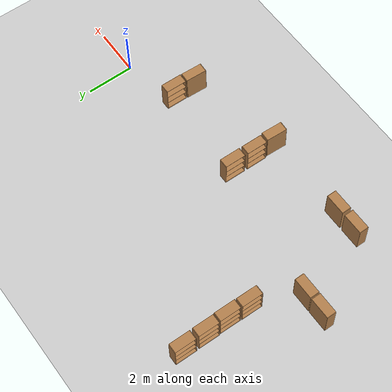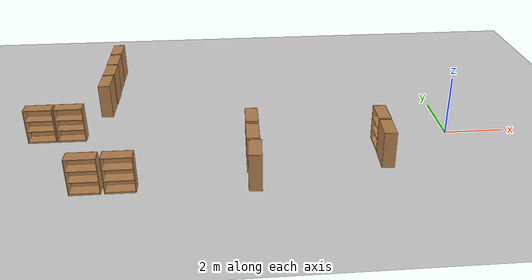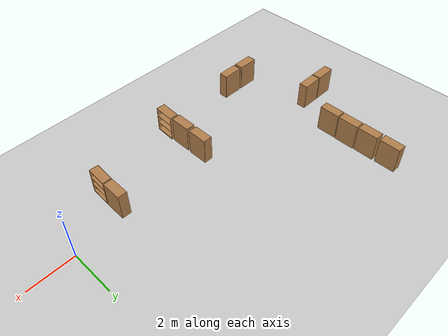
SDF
<sdf version="1.6">
 <world name="default">
  <model name="ground_plane">
   <static>1</static>
   <link name="link">
    <collision name="collision">
     <geometry><plane><normal>0 0 1</normal><size>100 100</size></plane></geometry>
     <surface>
      <contact><collide_bitmask>65535</collide_bitmask></contact>
      <friction><ode><mu>100</mu><mu2>50</mu2></ode></friction>
     </surface>
    </collision>
    <visual name="visual">
     <cast_shadows>0</cast_shadows>
     <geometry><plane><normal>0 0 1</normal><size>100 100</size></plane></geometry>
     <material>
      <script><uri>file://media/materials/scripts/gazebo.material</uri><name>Gazebo/Grey</name></script>
     </material>
    </visual>
   </link>
  </model>
  <model name="bookshelf_clone_0_clone_clone_3">
   <static>1</static>
   <link name="link">
    <inertial><mass>1</mass></inertial>
    <collision name="back">
     <pose>0 0.005 0.6 0 -0 0</pose>
     <geometry><box><size>0.9 0.01 1.2</size></box></geometry>
    </collision>
    <visual name="visual1">
     <pose>0 0.005 0.6 0 -0 0</pose>
     <geometry><box><size>0.9 0.01 1.2</size></box></geometry>
     <material>
      <script><uri>file://media/materials/scripts/gazebo.material</uri><name>Gazebo/Wood</name></script>
     </material>
    </visual>
    <collision name="left_side">
     <pose>0.45 -0.195 0.6 0 -0 0</pose>
     <geometry><box><size>0.02 0.4 1.2</size></box></geometry>
    </collision>
    <visual name="visual2">
     <pose>0.45 -0.195 0.6 0 -0 0</pose>
     <geometry><box><size>0.02 0.4 1.2</size></box></geometry>
     <material>
      <script><uri>file://media/materials/scripts/gazebo.material</uri><name>Gazebo/Wood</name></script>
     </material>
    </visual>
    <collision name="right_side">
     <pose>-0.45 -0.195 0.6 0 -0 0</pose>
     <geometry><box><size>0.02 0.4 1.2</size></box></geometry>
    </collision>
    <visual name="visual3">
     <pose>-0.45 -0.195 0.6 0 -0 0</pose>
     <geometry><box><size>0.02 0.4 1.2</size></box></geometry>
     <material>
      <script><uri>file://media/materials/scripts/gazebo.material</uri><name>Gazebo/Wood</name></script>
     </material>
    </visual>
    <collision name="bottom">
     <pose>0 -0.195 0.03 0 -0 0</pose>
     <geometry><box><size>0.88 0.4 0.06</size></box></geometry>
    </collision>
    <visual name="visual4">
     <pose>0 -0.195 0.03 0 -0 0</pose>
     <geometry><box><size>0.88 0.4 0.06</size></box></geometry>
     <material>
      <script><uri>file://media/materials/scripts/gazebo.material</uri><name>Gazebo/Wood</name></script>
     </material>
    </visual>
    <collision name="top">
     <pose>0 -0.195 1.19 0 -0 0</pose>
     <geometry><box><size>0.88 0.4 0.02</size></box></geometry>
    </collision>
    <visual name="visual5">
     <pose>0 -0.195 1.19 0 -0 0</pose>
     <geometry><box><size>0.88 0.4 0.02</size></box></geometry>
     <material>
      <script><uri>file://media/materials/scripts/gazebo.material</uri><name>Gazebo/Wood</name></script>
     </material>
    </visual>
    <collision name="low_shelf">
     <pose>0 -0.195 0.43 0 -0 0</pose>
     <geometry><box><size>0.88 0.4 0.02</size></box></geometry>
    </collision>
    <visual name="visual6">
     <pose>0 -0.195 0.43 0 -0 0</pose>
     <geometry><box><size>0.88 0.4 0.02</size></box></geometry>
     <material>
      <script><uri>file://media/materials/scripts/gazebo.material</uri><name>Gazebo/Wood</name></script>
     </material>
    </visual>
    <collision name="high_shelf">
     <pose>0 -0.195 0.8 0 -0 0</pose>
     <geometry><box><size>0.88 0.4 0.02</size></box></geometry>
    </collision>
    <visual name="visual7">
     <pose>0 -0.195 0.8 0 -0 0</pose>
     <geometry><box><size>0.88 0.4 0.02</size></box></geometry>
     <material>
      <script><uri>file://media/materials/scripts/gazebo.material</uri><name>Gazebo/Wood</name></script>
     </material>
    </visual>
   </link>
   <pose>-2.2019 -0.580917 0 0 0 -1.58271</pose>
  </model>
  <model name="bookshelf_clone_0_clone_clone_4">
   <static>1</static>
   <link name="link">
    <inertial><mass>1</mass></inertial>
    <collision name="back">
     <pose>0 0.005 0.6 0 -0 0</pose>
     <geometry><box><size>0.9 0.01 1.2</size></box></geometry>
    </collision>
    <visual name="visual1">
     <pose>0 0.005 0.6 0 -0 0</pose>
     <geometry><box><size>0.9 0.01 1.2</size></box></geometry>
     <material>
      <script><uri>file://media/materials/scripts/gazebo.material</uri><name>Gazebo/Wood</name></script>
     </material>
    </visual>
    <collision name="left_side">
     <pose>0.45 -0.195 0.6 0 -0 0</pose>
     <geometry><box><size>0.02 0.4 1.2</size></box></geometry>
    </collision>
    <visual name="visual2">
     <pose>0.45 -0.195 0.6 0 -0 0</pose>
     <geometry><box><size>0.02 0.4 1.2</size></box></geometry>
     <material>
      <script><uri>file://media/materials/scripts/gazebo.material</uri><name>Gazebo/Wood</name></script>
     </material>
    </visual>
    <collision name="right_side">
     <pose>-0.45 -0.195 0.6 0 -0 0</pose>
     <geometry><box><size>0.02 0.4 1.2</size></box></geometry>
    </collision>
    <visual name="visual3">
     <pose>-0.45 -0.195 0.6 0 -0 0</pose>
     <geometry><box><size>0.02 0.4 1.2</size></box></geometry>
     <material>
      <script><uri>file://media/materials/scripts/gazebo.material</uri><name>Gazebo/Wood</name></script>
     </material>
    </visual>
    <collision name="bottom">
     <pose>0 -0.195 0.03 0 -0 0</pose>
     <geometry><box><size>0.88 0.4 0.06</size></box></geometry>
    </collision>
    <visual name="visual4">
     <pose>0 -0.195 0.03 0 -0 0</pose>
     <geometry><box><size>0.88 0.4 0.06</size></box></geometry>
     <material>
      <script><uri>file://media/materials/scripts/gazebo.material</uri><name>Gazebo/Wood</name></script>
     </material>
    </visual>
    <collision name="top">
     <pose>0 -0.195 1.19 0 -0 0</pose>
     <geometry><box><size>0.88 0.4 0.02</size></box></geometry>
    </collision>
    <visual name="visual5">
     <pose>0 -0.195 1.19 0 -0 0</pose>
     <geometry><box><size>0.88 0.4 0.02</size></box></geometry>
     <material>
      <script><uri>file://media/materials/scripts/gazebo.material</uri><name>Gazebo/Wood</name></script>
     </material>
    </visual>
    <collision name="low_shelf">
     <pose>0 -0.195 0.43 0 -0 0</pose>
     <geometry><box><size>0.88 0.4 0.02</size></box></geometry>
    </collision>
    <visual name="visual6">
     <pose>0 -0.195 0.43 0 -0 0</pose>
     <geometry><box><size>0.88 0.4 0.02</size></box></geometry>
     <material>
      <script><uri>file://media/materials/scripts/gazebo.material</uri><name>Gazebo/Wood</name></script>
     </material>
    </visual>
    <collision name="high_shelf">
     <pose>0 -0.195 0.8 0 -0 0</pose>
     <geometry><box><size>0.88 0.4 0.02</size></box></geometry>
    </collision>
    <visual name="visual7">
     <pose>0 -0.195 0.8 0 -0 0</pose>
     <geometry><box><size>0.88 0.4 0.02</size></box></geometry>
     <material>
      <script><uri>file://media/materials/scripts/gazebo.material</uri><name>Gazebo/Wood</name></script>
     </material>
    </visual>
   </link>
   <pose>-2.6236 -1.54436 0 -0.000638 0.016748 1.52081</pose>
  </model>
  <model name="bookshelf_clone_0_clone_clone_3_clone_clone_2">
   <static>1</static>
   <link name="link">
    <inertial><mass>1</mass></inertial>
    <collision name="back">
     <pose>0 0.005 0.6 0 -0 0</pose>
     <geometry><box><size>0.9 0.01 1.2</size></box></geometry>
    </collision>
    <visual name="visual1">
     <pose>0 0.005 0.6 0 -0 0</pose>
     <geometry><box><size>0.9 0.01 1.2</size></box></geometry>
     <material>
      <script><uri>file://media/materials/scripts/gazebo.material</uri><name>Gazebo/Wood</name></script>
     </material>
    </visual>
    <collision name="left_side">
     <pose>0.45 -0.195 0.6 0 -0 0</pose>
     <geometry><box><size>0.02 0.4 1.2</size></box></geometry>
    </collision>
    <visual name="visual2">
     <pose>0.45 -0.195 0.6 0 -0 0</pose>
     <geometry><box><size>0.02 0.4 1.2</size></box></geometry>
     <material>
      <script><uri>file://media/materials/scripts/gazebo.material</uri><name>Gazebo/Wood</name></script>
     </material>
    </visual>
    <collision name="right_side">
     <pose>-0.45 -0.195 0.6 0 -0 0</pose>
     <geometry><box><size>0.02 0.4 1.2</size></box></geometry>
    </collision>
    <visual name="visual3">
     <pose>-0.45 -0.195 0.6 0 -0 0</pose>
     <geometry><box><size>0.02 0.4 1.2</size></box></geometry>
     <material>
      <script><uri>file://media/materials/scripts/gazebo.material</uri><name>Gazebo/Wood</name></script>
     </material>
    </visual>
    <collision name="bottom">
     <pose>0 -0.195 0.03 0 -0 0</pose>
     <geometry><box><size>0.88 0.4 0.06</size></box></geometry>
    </collision>
    <visual name="visual4">
     <pose>0 -0.195 0.03 0 -0 0</pose>
     <geometry><box><size>0.88 0.4 0.06</size></box></geometry>
     <material>
      <script><uri>file://media/materials/scripts/gazebo.material</uri><name>Gazebo/Wood</name></script>
     </material>
    </visual>
    <collision name="top">
     <pose>0 -0.195 1.19 0 -0 0</pose>
     <geometry><box><size>0.88 0.4 0.02</size></box></geometry>
    </collision>
    <visual name="visual5">
     <pose>0 -0.195 1.19 0 -0 0</pose>
     <geometry><box><size>0.88 0.4 0.02</size></box></geometry>
     <material>
      <script><uri>file://media/materials/scripts/gazebo.material</uri><name>Gazebo/Wood</name></script>
     </material>
    </visual>
    <collision name="low_shelf">
     <pose>0 -0.195 0.43 0 -0 0</pose>
     <geometry><box><size>0.88 0.4 0.02</size></box></geometry>
    </collision>
    <visual name="visual6">
     <pose>0 -0.195 0.43 0 -0 0</pose>
     <geometry><box><size>0.88 0.4 0.02</size></box></geometry>
     <material>
      <script><uri>file://media/materials/scripts/gazebo.material</uri><name>Gazebo/Wood</name></script>
     </material>
    </visual>
    <collision name="high_shelf">
     <pose>0 -0.195 0.8 0 -0 0</pose>
     <geometry><box><size>0.88 0.4 0.02</size></box></geometry>
    </collision>
    <visual name="visual7">
     <pose>0 -0.195 0.8 0 -0 0</pose>
     <geometry><box><size>0.88 0.4 0.02</size></box></geometry>
     <material>
      <script><uri>file://media/materials/scripts/gazebo.material</uri><name>Gazebo/Wood</name></script>
     </material>
    </visual>
   </link>
   <pose>-6.37164 -0.426664 0 0 0 -1.58271</pose>
  </model>
  <model name="bookshelf_clone_0_clone_clone_3_clone_clone_1">
   <static>1</static>
   <link name="link">
    <inertial><mass>1</mass></inertial>
    <collision name="back">
     <pose>0 0.005 0.6 0 -0 0</pose>
     <geometry><box><size>0.9 0.01 1.2</size></box></geometry>
    </collision>
    <visual name="visual1">
     <pose>0 0.005 0.6 0 -0 0</pose>
     <geometry><box><size>0.9 0.01 1.2</size></box></geometry>
     <material>
      <script><uri>file://media/materials/scripts/gazebo.material</uri><name>Gazebo/Wood</name></script>
     </material>
    </visual>
    <collision name="left_side">
     <pose>0.45 -0.195 0.6 0 -0 0</pose>
     <geometry><box><size>0.02 0.4 1.2</size></box></geometry>
    </collision>
    <visual name="visual2">
     <pose>0.45 -0.195 0.6 0 -0 0</pose>
     <geometry><box><size>0.02 0.4 1.2</size></box></geometry>
     <material>
      <script><uri>file://media/materials/scripts/gazebo.material</uri><name>Gazebo/Wood</name></script>
     </material>
    </visual>
    <collision name="right_side">
     <pose>-0.45 -0.195 0.6 0 -0 0</pose>
     <geometry><box><size>0.02 0.4 1.2</size></box></geometry>
    </collision>
    <visual name="visual3">
     <pose>-0.45 -0.195 0.6 0 -0 0</pose>
     <geometry><box><size>0.02 0.4 1.2</size></box></geometry>
     <material>
      <script><uri>file://media/materials/scripts/gazebo.material</uri><name>Gazebo/Wood</name></script>
     </material>
    </visual>
    <collision name="bottom">
     <pose>0 -0.195 0.03 0 -0 0</pose>
     <geometry><box><size>0.88 0.4 0.06</size></box></geometry>
    </collision>
    <visual name="visual4">
     <pose>0 -0.195 0.03 0 -0 0</pose>
     <geometry><box><size>0.88 0.4 0.06</size></box></geometry>
     <material>
      <script><uri>file://media/materials/scripts/gazebo.material</uri><name>Gazebo/Wood</name></script>
     </material>
    </visual>
    <collision name="top">
     <pose>0 -0.195 1.19 0 -0 0</pose>
     <geometry><box><size>0.88 0.4 0.02</size></box></geometry>
    </collision>
    <visual name="visual5">
     <pose>0 -0.195 1.19 0 -0 0</pose>
     <geometry><box><size>0.88 0.4 0.02</size></box></geometry>
     <material>
      <script><uri>file://media/materials/scripts/gazebo.material</uri><name>Gazebo/Wood</name></script>
     </material>
    </visual>
    <collision name="low_shelf">
     <pose>0 -0.195 0.43 0 -0 0</pose>
     <geometry><box><size>0.88 0.4 0.02</size></box></geometry>
    </collision>
    <visual name="visual6">
     <pose>0 -0.195 0.43 0 -0 0</pose>
     <geometry><box><size>0.88 0.4 0.02</size></box></geometry>
     <material>
      <script><uri>file://media/materials/scripts/gazebo.material</uri><name>Gazebo/Wood</name></script>
     </material>
    </visual>
    <collision name="high_shelf">
     <pose>0 -0.195 0.8 0 -0 0</pose>
     <geometry><box><size>0.88 0.4 0.02</size></box></geometry>
    </collision>
    <visual name="visual7">
     <pose>0 -0.195 0.8 0 -0 0</pose>
     <geometry><box><size>0.88 0.4 0.02</size></box></geometry>
     <material>
      <script><uri>file://media/materials/scripts/gazebo.material</uri><name>Gazebo/Wood</name></script>
     </material>
    </visual>
   </link>
   <pose>-6.38835 -1.46273 0 0 0 -1.58271</pose>
  </model>
  <model name="bookshelf_clone_0_clone_clone_3_clone_clone_2_clone">
   <static>1</static>
   <link name="link">
    <inertial><mass>1</mass></inertial>
    <collision name="back">
     <pose>0 0.005 0.6 0 -0 0</pose>
     <geometry><box><size>0.9 0.01 1.2</size></box></geometry>
    </collision>
    <visual name="visual1">
     <pose>0 0.005 0.6 0 -0 0</pose>
     <geometry><box><size>0.9 0.01 1.2</size></box></geometry>
     <material>
      <script><uri>file://media/materials/scripts/gazebo.material</uri><name>Gazebo/Wood</name></script>
     </material>
    </visual>
    <collision name="left_side">
     <pose>0.45 -0.195 0.6 0 -0 0</pose>
     <geometry><box><size>0.02 0.4 1.2</size></box></geometry>
    </collision>
    <visual name="visual2">
     <pose>0.45 -0.195 0.6 0 -0 0</pose>
     <geometry><box><size>0.02 0.4 1.2</size></box></geometry>
     <material>
      <script><uri>file://media/materials/scripts/gazebo.material</uri><name>Gazebo/Wood</name></script>
     </material>
    </visual>
    <collision name="right_side">
     <pose>-0.45 -0.195 0.6 0 -0 0</pose>
     <geometry><box><size>0.02 0.4 1.2</size></box></geometry>
    </collision>
    <visual name="visual3">
     <pose>-0.45 -0.195 0.6 0 -0 0</pose>
     <geometry><box><size>0.02 0.4 1.2</size></box></geometry>
     <material>
      <script><uri>file://media/materials/scripts/gazebo.material</uri><name>Gazebo/Wood</name></script>
     </material>
    </visual>
    <collision name="bottom">
     <pose>0 -0.195 0.03 0 -0 0</pose>
     <geometry><box><size>0.88 0.4 0.06</size></box></geometry>
    </collision>
    <visual name="visual4">
     <pose>0 -0.195 0.03 0 -0 0</pose>
     <geometry><box><size>0.88 0.4 0.06</size></box></geometry>
     <material>
      <script><uri>file://media/materials/scripts/gazebo.material</uri><name>Gazebo/Wood</name></script>
     </material>
    </visual>
    <collision name="top">
     <pose>0 -0.195 1.19 0 -0 0</pose>
     <geometry><box><size>0.88 0.4 0.02</size></box></geometry>
    </collision>
    <visual name="visual5">
     <pose>0 -0.195 1.19 0 -0 0</pose>
     <geometry><box><size>0.88 0.4 0.02</size></box></geometry>
     <material>
      <script><uri>file://media/materials/scripts/gazebo.material</uri><name>Gazebo/Wood</name></script>
     </material>
    </visual>
    <collision name="low_shelf">
     <pose>0 -0.195 0.43 0 -0 0</pose>
     <geometry><box><size>0.88 0.4 0.02</size></box></geometry>
    </collision>
    <visual name="visual6">
     <pose>0 -0.195 0.43 0 -0 0</pose>
     <geometry><box><size>0.88 0.4 0.02</size></box></geometry>
     <material>
      <script><uri>file://media/materials/scripts/gazebo.material</uri><name>Gazebo/Wood</name></script>
     </material>
    </visual>
    <collision name="high_shelf">
     <pose>0 -0.195 0.8 0 -0 0</pose>
     <geometry><box><size>0.88 0.4 0.02</size></box></geometry>
    </collision>
    <visual name="visual7">
     <pose>0 -0.195 0.8 0 -0 0</pose>
     <geometry><box><size>0.88 0.4 0.02</size></box></geometry>
     <material>
      <script><uri>file://media/materials/scripts/gazebo.material</uri><name>Gazebo/Wood</name></script>
     </material>
    </visual>
   </link>
   <pose>-11.3512 5.46993 0 0 0 -1.58271</pose>
  </model>
  <model name="bookshelf_clone_0_clone_clone_3_clone_clone_2_clone_0">
   <static>1</static>
   <link name="link">
    <inertial><mass>1</mass></inertial>
    <collision name="back">
     <pose>0 0.005 0.6 0 -0 0</pose>
     <geometry><box><size>0.9 0.01 1.2</size></box></geometry>
    </collision>
    <visual name="visual1">
     <pose>0 0.005 0.6 0 -0 0</pose>
     <geometry><box><size>0.9 0.01 1.2</size></box></geometry>
     <material>
      <script><uri>file://media/materials/scripts/gazebo.material</uri><name>Gazebo/Wood</name></script>
     </material>
    </visual>
    <collision name="left_side">
     <pose>0.45 -0.195 0.6 0 -0 0</pose>
     <geometry><box><size>0.02 0.4 1.2</size></box></geometry>
    </collision>
    <visual name="visual2">
     <pose>0.45 -0.195 0.6 0 -0 0</pose>
     <geometry><box><size>0.02 0.4 1.2</size></box></geometry>
     <material>
      <script><uri>file://media/materials/scripts/gazebo.material</uri><name>Gazebo/Wood</name></script>
     </material>
    </visual>
    <collision name="right_side">
     <pose>-0.45 -0.195 0.6 0 -0 0</pose>
     <geometry><box><size>0.02 0.4 1.2</size></box></geometry>
    </collision>
    <visual name="visual3">
     <pose>-0.45 -0.195 0.6 0 -0 0</pose>
     <geometry><box><size>0.02 0.4 1.2</size></box></geometry>
     <material>
      <script><uri>file://media/materials/scripts/gazebo.material</uri><name>Gazebo/Wood</name></script>
     </material>
    </visual>
    <collision name="bottom">
     <pose>0 -0.195 0.03 0 -0 0</pose>
     <geometry><box><size>0.88 0.4 0.06</size></box></geometry>
    </collision>
    <visual name="visual4">
     <pose>0 -0.195 0.03 0 -0 0</pose>
     <geometry><box><size>0.88 0.4 0.06</size></box></geometry>
     <material>
      <script><uri>file://media/materials/scripts/gazebo.material</uri><name>Gazebo/Wood</name></script>
     </material>
    </visual>
    <collision name="top">
     <pose>0 -0.195 1.19 0 -0 0</pose>
     <geometry><box><size>0.88 0.4 0.02</size></box></geometry>
    </collision>
    <visual name="visual5">
     <pose>0 -0.195 1.19 0 -0 0</pose>
     <geometry><box><size>0.88 0.4 0.02</size></box></geometry>
     <material>
      <script><uri>file://media/materials/scripts/gazebo.material</uri><name>Gazebo/Wood</name></script>
     </material>
    </visual>
    <collision name="low_shelf">
     <pose>0 -0.195 0.43 0 -0 0</pose>
     <geometry><box><size>0.88 0.4 0.02</size></box></geometry>
    </collision>
    <visual name="visual6">
     <pose>0 -0.195 0.43 0 -0 0</pose>
     <geometry><box><size>0.88 0.4 0.02</size></box></geometry>
     <material>
      <script><uri>file://media/materials/scripts/gazebo.material</uri><name>Gazebo/Wood</name></script>
     </material>
    </visual>
    <collision name="high_shelf">
     <pose>0 -0.195 0.8 0 -0 0</pose>
     <geometry><box><size>0.88 0.4 0.02</size></box></geometry>
    </collision>
    <visual name="visual7">
     <pose>0 -0.195 0.8 0 -0 0</pose>
     <geometry><box><size>0.88 0.4 0.02</size></box></geometry>
     <material>
      <script><uri>file://media/materials/scripts/gazebo.material</uri><name>Gazebo/Wood</name></script>
     </material>
    </visual>
   </link>
   <pose>-11.3492 4.44602 0 0 0 -1.58271</pose>
  </model>
  <model name="bookshelf_clone_0_clone_clone_3_clone_clone_2_clone_1">
   <static>1</static>
   <link name="link">
    <inertial><mass>1</mass></inertial>
    <collision name="back">
     <pose>0 0.005 0.6 0 -0 0</pose>
     <geometry><box><size>0.9 0.01 1.2</size></box></geometry>
    </collision>
    <visual name="visual1">
     <pose>0 0.005 0.6 0 -0 0</pose>
     <geometry><box><size>0.9 0.01 1.2</size></box></geometry>
     <material>
      <script><uri>file://media/materials/scripts/gazebo.material</uri><name>Gazebo/Wood</name></script>
     </material>
    </visual>
    <collision name="left_side">
     <pose>0.45 -0.195 0.6 0 -0 0</pose>
     <geometry><box><size>0.02 0.4 1.2</size></box></geometry>
    </collision>
    <visual name="visual2">
     <pose>0.45 -0.195 0.6 0 -0 0</pose>
     <geometry><box><size>0.02 0.4 1.2</size></box></geometry>
     <material>
      <script><uri>file://media/materials/scripts/gazebo.material</uri><name>Gazebo/Wood</name></script>
     </material>
    </visual>
    <collision name="right_side">
     <pose>-0.45 -0.195 0.6 0 -0 0</pose>
     <geometry><box><size>0.02 0.4 1.2</size></box></geometry>
    </collision>
    <visual name="visual3">
     <pose>-0.45 -0.195 0.6 0 -0 0</pose>
     <geometry><box><size>0.02 0.4 1.2</size></box></geometry>
     <material>
      <script><uri>file://media/materials/scripts/gazebo.material</uri><name>Gazebo/Wood</name></script>
     </material>
    </visual>
    <collision name="bottom">
     <pose>0 -0.195 0.03 0 -0 0</pose>
     <geometry><box><size>0.88 0.4 0.06</size></box></geometry>
    </collision>
    <visual name="visual4">
     <pose>0 -0.195 0.03 0 -0 0</pose>
     <geometry><box><size>0.88 0.4 0.06</size></box></geometry>
     <material>
      <script><uri>file://media/materials/scripts/gazebo.material</uri><name>Gazebo/Wood</name></script>
     </material>
    </visual>
    <collision name="top">
     <pose>0 -0.195 1.19 0 -0 0</pose>
     <geometry><box><size>0.88 0.4 0.02</size></box></geometry>
    </collision>
    <visual name="visual5">
     <pose>0 -0.195 1.19 0 -0 0</pose>
     <geometry><box><size>0.88 0.4 0.02</size></box></geometry>
     <material>
      <script><uri>file://media/materials/scripts/gazebo.material</uri><name>Gazebo/Wood</name></script>
     </material>
    </visual>
    <collision name="low_shelf">
     <pose>0 -0.195 0.43 0 -0 0</pose>
     <geometry><box><size>0.88 0.4 0.02</size></box></geometry>
    </collision>
    <visual name="visual6">
     <pose>0 -0.195 0.43 0 -0 0</pose>
     <geometry><box><size>0.88 0.4 0.02</size></box></geometry>
     <material>
      <script><uri>file://media/materials/scripts/gazebo.material</uri><name>Gazebo/Wood</name></script>
     </material>
    </visual>
    <collision name="high_shelf">
     <pose>0 -0.195 0.8 0 -0 0</pose>
     <geometry><box><size>0.88 0.4 0.02</size></box></geometry>
    </collision>
    <visual name="visual7">
     <pose>0 -0.195 0.8 0 -0 0</pose>
     <geometry><box><size>0.88 0.4 0.02</size></box></geometry>
     <material>
      <script><uri>file://media/materials/scripts/gazebo.material</uri><name>Gazebo/Wood</name></script>
     </material>
    </visual>
   </link>
   <pose>-11.3381 3.4883 0 0 0 -1.58271</pose>
  </model>
  <model name="bookshelf_clone_0_clone_clone_3_clone_clone_2_clone_2">
   <static>1</static>
   <link name="link">
    <inertial><mass>1</mass></inertial>
    <collision name="back">
     <pose>0 0.005 0.6 0 -0 0</pose>
     <geometry><box><size>0.9 0.01 1.2</size></box></geometry>
    </collision>
    <visual name="visual1">
     <pose>0 0.005 0.6 0 -0 0</pose>
     <geometry><box><size>0.9 0.01 1.2</size></box></geometry>
     <material>
      <script><uri>file://media/materials/scripts/gazebo.material</uri><name>Gazebo/Wood</name></script>
     </material>
    </visual>
    <collision name="left_side">
     <pose>0.45 -0.195 0.6 0 -0 0</pose>
     <geometry><box><size>0.02 0.4 1.2</size></box></geometry>
    </collision>
    <visual name="visual2">
     <pose>0.45 -0.195 0.6 0 -0 0</pose>
     <geometry><box><size>0.02 0.4 1.2</size></box></geometry>
     <material>
      <script><uri>file://media/materials/scripts/gazebo.material</uri><name>Gazebo/Wood</name></script>
     </material>
    </visual>
    <collision name="right_side">
     <pose>-0.45 -0.195 0.6 0 -0 0</pose>
     <geometry><box><size>0.02 0.4 1.2</size></box></geometry>
    </collision>
    <visual name="visual3">
     <pose>-0.45 -0.195 0.6 0 -0 0</pose>
     <geometry><box><size>0.02 0.4 1.2</size></box></geometry>
     <material>
      <script><uri>file://media/materials/scripts/gazebo.material</uri><name>Gazebo/Wood</name></script>
     </material>
    </visual>
    <collision name="bottom">
     <pose>0 -0.195 0.03 0 -0 0</pose>
     <geometry><box><size>0.88 0.4 0.06</size></box></geometry>
    </collision>
    <visual name="visual4">
     <pose>0 -0.195 0.03 0 -0 0</pose>
     <geometry><box><size>0.88 0.4 0.06</size></box></geometry>
     <material>
      <script><uri>file://media/materials/scripts/gazebo.material</uri><name>Gazebo/Wood</name></script>
     </material>
    </visual>
    <collision name="top">
     <pose>0 -0.195 1.19 0 -0 0</pose>
     <geometry><box><size>0.88 0.4 0.02</size></box></geometry>
    </collision>
    <visual name="visual5">
     <pose>0 -0.195 1.19 0 -0 0</pose>
     <geometry><box><size>0.88 0.4 0.02</size></box></geometry>
     <material>
      <script><uri>file://media/materials/scripts/gazebo.material</uri><name>Gazebo/Wood</name></script>
     </material>
    </visual>
    <collision name="low_shelf">
     <pose>0 -0.195 0.43 0 -0 0</pose>
     <geometry><box><size>0.88 0.4 0.02</size></box></geometry>
    </collision>
    <visual name="visual6">
     <pose>0 -0.195 0.43 0 -0 0</pose>
     <geometry><box><size>0.88 0.4 0.02</size></box></geometry>
     <material>
      <script><uri>file://media/materials/scripts/gazebo.material</uri><name>Gazebo/Wood</name></script>
     </material>
    </visual>
    <collision name="high_shelf">
     <pose>0 -0.195 0.8 0 -0 0</pose>
     <geometry><box><size>0.88 0.4 0.02</size></box></geometry>
    </collision>
    <visual name="visual7">
     <pose>0 -0.195 0.8 0 -0 0</pose>
     <geometry><box><size>0.88 0.4 0.02</size></box></geometry>
     <material>
      <script><uri>file://media/materials/scripts/gazebo.material</uri><name>Gazebo/Wood</name></script>
     </material>
    </visual>
   </link>
   <pose>-11.3614 2.52412 0 0 0 -1.58271</pose>
  </model>
  <model name="bookshelf_clone_clone_clone_1">
   <static>1</static>
   <link name="link">
    <inertial><mass>1</mass></inertial>
    <collision name="back">
     <pose>0 0.005 0.6 0 -0 0</pose>
     <geometry><box><size>0.9 0.01 1.2</size></box></geometry>
    </collision>
    <visual name="visual1">
     <pose>0 0.005 0.6 0 -0 0</pose>
     <geometry><box><size>0.9 0.01 1.2</size></box></geometry>
     <material>
      <script><uri>file://media/materials/scripts/gazebo.material</uri><name>Gazebo/Wood</name></script>
     </material>
    </visual>
    <collision name="left_side">
     <pose>0.45 -0.195 0.6 0 -0 0</pose>
     <geometry><box><size>0.02 0.4 1.2</size></box></geometry>
    </collision>
    <visual name="visual2">
     <pose>0.45 -0.195 0.6 0 -0 0</pose>
     <geometry><box><size>0.02 0.4 1.2</size></box></geometry>
     <material>
      <script><uri>file://media/materials/scripts/gazebo.material</uri><name>Gazebo/Wood</name></script>
     </material>
    </visual>
    <collision name="right_side">
     <pose>-0.45 -0.195 0.6 0 -0 0</pose>
     <geometry><box><size>0.02 0.4 1.2</size></box></geometry>
    </collision>
    <visual name="visual3">
     <pose>-0.45 -0.195 0.6 0 -0 0</pose>
     <geometry><box><size>0.02 0.4 1.2</size></box></geometry>
     <material>
      <script><uri>file://media/materials/scripts/gazebo.material</uri><name>Gazebo/Wood</name></script>
     </material>
    </visual>
    <collision name="bottom">
     <pose>0 -0.195 0.03 0 -0 0</pose>
     <geometry><box><size>0.88 0.4 0.06</size></box></geometry>
    </collision>
    <visual name="visual4">
     <pose>0 -0.195 0.03 0 -0 0</pose>
     <geometry><box><size>0.88 0.4 0.06</size></box></geometry>
     <material>
      <script><uri>file://media/materials/scripts/gazebo.material</uri><name>Gazebo/Wood</name></script>
     </material>
    </visual>
    <collision name="top">
     <pose>0 -0.195 1.19 0 -0 0</pose>
     <geometry><box><size>0.88 0.4 0.02</size></box></geometry>
    </collision>
    <visual name="visual5">
     <pose>0 -0.195 1.19 0 -0 0</pose>
     <geometry><box><size>0.88 0.4 0.02</size></box></geometry>
     <material>
      <script><uri>file://media/materials/scripts/gazebo.material</uri><name>Gazebo/Wood</name></script>
     </material>
    </visual>
    <collision name="low_shelf">
     <pose>0 -0.195 0.43 0 -0 0</pose>
     <geometry><box><size>0.88 0.4 0.02</size></box></geometry>
    </collision>
    <visual name="visual6">
     <pose>0 -0.195 0.43 0 -0 0</pose>
     <geometry><box><size>0.88 0.4 0.02</size></box></geometry>
     <material>
      <script><uri>file://media/materials/scripts/gazebo.material</uri><name>Gazebo/Wood</name></script>
     </material>
    </visual>
    <collision name="high_shelf">
     <pose>0 -0.195 0.8 0 -0 0</pose>
     <geometry><box><size>0.88 0.4 0.02</size></box></geometry>
    </collision>
    <visual name="visual7">
     <pose>0 -0.195 0.8 0 -0 0</pose>
     <geometry><box><size>0.88 0.4 0.02</size></box></geometry>
     <material>
      <script><uri>file://media/materials/scripts/gazebo.material</uri><name>Gazebo/Wood</name></script>
     </material>
    </visual>
   </link>
   <pose>-12.4591 0.800519 0 0 -0 0</pose>
  </model>
  <model name="bookshelf_clone_clone_clone_2">
   <static>1</static>
   <link name="link">
    <inertial><mass>1</mass></inertial>
    <collision name="back">
     <pose>0 0.005 0.6 0 -0 0</pose>
     <geometry><box><size>0.9 0.01 1.2</size></box></geometry>
    </collision>
    <visual name="visual1">
     <pose>0 0.005 0.6 0 -0 0</pose>
     <geometry><box><size>0.9 0.01 1.2</size></box></geometry>
     <material>
      <script><uri>file://media/materials/scripts/gazebo.material</uri><name>Gazebo/Wood</name></script>
     </material>
    </visual>
    <collision name="left_side">
     <pose>0.45 -0.195 0.6 0 -0 0</pose>
     <geometry><box><size>0.02 0.4 1.2</size></box></geometry>
    </collision>
    <visual name="visual2">
     <pose>0.45 -0.195 0.6 0 -0 0</pose>
     <geometry><box><size>0.02 0.4 1.2</size></box></geometry>
     <material>
      <script><uri>file://media/materials/scripts/gazebo.material</uri><name>Gazebo/Wood</name></script>
     </material>
    </visual>
    <collision name="right_side">
     <pose>-0.45 -0.195 0.6 0 -0 0</pose>
     <geometry><box><size>0.02 0.4 1.2</size></box></geometry>
    </collision>
    <visual name="visual3">
     <pose>-0.45 -0.195 0.6 0 -0 0</pose>
     <geometry><box><size>0.02 0.4 1.2</size></box></geometry>
     <material>
      <script><uri>file://media/materials/scripts/gazebo.material</uri><name>Gazebo/Wood</name></script>
     </material>
    </visual>
    <collision name="bottom">
     <pose>0 -0.195 0.03 0 -0 0</pose>
     <geometry><box><size>0.88 0.4 0.06</size></box></geometry>
    </collision>
    <visual name="visual4">
     <pose>0 -0.195 0.03 0 -0 0</pose>
     <geometry><box><size>0.88 0.4 0.06</size></box></geometry>
     <material>
      <script><uri>file://media/materials/scripts/gazebo.material</uri><name>Gazebo/Wood</name></script>
     </material>
    </visual>
    <collision name="top">
     <pose>0 -0.195 1.19 0 -0 0</pose>
     <geometry><box><size>0.88 0.4 0.02</size></box></geometry>
    </collision>
    <visual name="visual5">
     <pose>0 -0.195 1.19 0 -0 0</pose>
     <geometry><box><size>0.88 0.4 0.02</size></box></geometry>
     <material>
      <script><uri>file://media/materials/scripts/gazebo.material</uri><name>Gazebo/Wood</name></script>
     </material>
    </visual>
    <collision name="low_shelf">
     <pose>0 -0.195 0.43 0 -0 0</pose>
     <geometry><box><size>0.88 0.4 0.02</size></box></geometry>
    </collision>
    <visual name="visual6">
     <pose>0 -0.195 0.43 0 -0 0</pose>
     <geometry><box><size>0.88 0.4 0.02</size></box></geometry>
     <material>
      <script><uri>file://media/materials/scripts/gazebo.material</uri><name>Gazebo/Wood</name></script>
     </material>
    </visual>
    <collision name="high_shelf">
     <pose>0 -0.195 0.8 0 -0 0</pose>
     <geometry><box><size>0.88 0.4 0.02</size></box></geometry>
    </collision>
    <visual name="visual7">
     <pose>0 -0.195 0.8 0 -0 0</pose>
     <geometry><box><size>0.88 0.4 0.02</size></box></geometry>
     <material>
      <script><uri>file://media/materials/scripts/gazebo.material</uri><name>Gazebo/Wood</name></script>
     </material>
    </visual>
   </link>
   <pose>-13.4151 0.800449 0 0 -0 0</pose>
  </model>
  <model name="bookshelf_clone_clone_clone_0_clone_0_clone_clone_3">
   <static>1</static>
   <link name="link">
    <inertial><mass>1</mass></inertial>
    <collision name="back">
     <pose>0 0.005 0.6 0 -0 0</pose>
     <geometry><box><size>0.9 0.01 1.2</size></box></geometry>
    </collision>
    <visual name="visual1">
     <pose>0 0.005 0.6 0 -0 0</pose>
     <geometry><box><size>0.9 0.01 1.2</size></box></geometry>
     <material>
      <script><uri>file://media/materials/scripts/gazebo.material</uri><name>Gazebo/Wood</name></script>
     </material>
    </visual>
    <collision name="left_side">
     <pose>0.45 -0.195 0.6 0 -0 0</pose>
     <geometry><box><size>0.02 0.4 1.2</size></box></geometry>
    </collision>
    <visual name="visual2">
     <pose>0.45 -0.195 0.6 0 -0 0</pose>
     <geometry><box><size>0.02 0.4 1.2</size></box></geometry>
     <material>
      <script><uri>file://media/materials/scripts/gazebo.material</uri><name>Gazebo/Wood</name></script>
     </material>
    </visual>
    <collision name="right_side">
     <pose>-0.45 -0.195 0.6 0 -0 0</pose>
     <geometry><box><size>0.02 0.4 1.2</size></box></geometry>
    </collision>
    <visual name="visual3">
     <pose>-0.45 -0.195 0.6 0 -0 0</pose>
     <geometry><box><size>0.02 0.4 1.2</size></box></geometry>
     <material>
      <script><uri>file://media/materials/scripts/gazebo.material</uri><name>Gazebo/Wood</name></script>
     </material>
    </visual>
    <collision name="bottom">
     <pose>0 -0.195 0.03 0 -0 0</pose>
     <geometry><box><size>0.88 0.4 0.06</size></box></geometry>
    </collision>
    <visual name="visual4">
     <pose>0 -0.195 0.03 0 -0 0</pose>
     <geometry><box><size>0.88 0.4 0.06</size></box></geometry>
     <material>
      <script><uri>file://media/materials/scripts/gazebo.material</uri><name>Gazebo/Wood</name></script>
     </material>
    </visual>
    <collision name="top">
     <pose>0 -0.195 1.19 0 -0 0</pose>
     <geometry><box><size>0.88 0.4 0.02</size></box></geometry>
    </collision>
    <visual name="visual5">
     <pose>0 -0.195 1.19 0 -0 0</pose>
     <geometry><box><size>0.88 0.4 0.02</size></box></geometry>
     <material>
      <script><uri>file://media/materials/scripts/gazebo.material</uri><name>Gazebo/Wood</name></script>
     </material>
    </visual>
    <collision name="low_shelf">
     <pose>0 -0.195 0.43 0 -0 0</pose>
     <geometry><box><size>0.88 0.4 0.02</size></box></geometry>
    </collision>
    <visual name="visual6">
     <pose>0 -0.195 0.43 0 -0 0</pose>
     <geometry><box><size>0.88 0.4 0.02</size></box></geometry>
     <material>
      <script><uri>file://media/materials/scripts/gazebo.material</uri><name>Gazebo/Wood</name></script>
     </material>
    </visual>
    <collision name="high_shelf">
     <pose>0 -0.195 0.8 0 -0 0</pose>
     <geometry><box><size>0.88 0.4 0.02</size></box></geometry>
    </collision>
    <visual name="visual7">
     <pose>0 -0.195 0.8 0 -0 0</pose>
     <geometry><box><size>0.88 0.4 0.02</size></box></geometry>
     <material>
      <script><uri>file://media/materials/scripts/gazebo.material</uri><name>Gazebo/Wood</name></script>
     </material>
    </visual>
   </link>
   <pose>-11.5018 -2.31045 0 0 -0 0</pose>
  </model>
  <model name="bookshelf_clone_clone_clone_0_clone_0_clone_clone_4">
   <static>1</static>
   <link name="link">
    <inertial><mass>1</mass></inertial>
    <collision name="back">
     <pose>0 0.005 0.6 0 -0 0</pose>
     <geometry><box><size>0.9 0.01 1.2</size></box></geometry>
    </collision>
    <visual name="visual1">
     <pose>0 0.005 0.6 0 -0 0</pose>
     <geometry><box><size>0.9 0.01 1.2</size></box></geometry>
     <material>
      <script><uri>file://media/materials/scripts/gazebo.material</uri><name>Gazebo/Wood</name></script>
     </material>
    </visual>
    <collision name="left_side">
     <pose>0.45 -0.195 0.6 0 -0 0</pose>
     <geometry><box><size>0.02 0.4 1.2</size></box></geometry>
    </collision>
    <visual name="visual2">
     <pose>0.45 -0.195 0.6 0 -0 0</pose>
     <geometry><box><size>0.02 0.4 1.2</size></box></geometry>
     <material>
      <script><uri>file://media/materials/scripts/gazebo.material</uri><name>Gazebo/Wood</name></script>
     </material>
    </visual>
    <collision name="right_side">
     <pose>-0.45 -0.195 0.6 0 -0 0</pose>
     <geometry><box><size>0.02 0.4 1.2</size></box></geometry>
    </collision>
    <visual name="visual3">
     <pose>-0.45 -0.195 0.6 0 -0 0</pose>
     <geometry><box><size>0.02 0.4 1.2</size></box></geometry>
     <material>
      <script><uri>file://media/materials/scripts/gazebo.material</uri><name>Gazebo/Wood</name></script>
     </material>
    </visual>
    <collision name="bottom">
     <pose>0 -0.195 0.03 0 -0 0</pose>
     <geometry><box><size>0.88 0.4 0.06</size></box></geometry>
    </collision>
    <visual name="visual4">
     <pose>0 -0.195 0.03 0 -0 0</pose>
     <geometry><box><size>0.88 0.4 0.06</size></box></geometry>
     <material>
      <script><uri>file://media/materials/scripts/gazebo.material</uri><name>Gazebo/Wood</name></script>
     </material>
    </visual>
    <collision name="top">
     <pose>0 -0.195 1.19 0 -0 0</pose>
     <geometry><box><size>0.88 0.4 0.02</size></box></geometry>
    </collision>
    <visual name="visual5">
     <pose>0 -0.195 1.19 0 -0 0</pose>
     <geometry><box><size>0.88 0.4 0.02</size></box></geometry>
     <material>
      <script><uri>file://media/materials/scripts/gazebo.material</uri><name>Gazebo/Wood</name></script>
     </material>
    </visual>
    <collision name="low_shelf">
     <pose>0 -0.195 0.43 0 -0 0</pose>
     <geometry><box><size>0.88 0.4 0.02</size></box></geometry>
    </collision>
    <visual name="visual6">
     <pose>0 -0.195 0.43 0 -0 0</pose>
     <geometry><box><size>0.88 0.4 0.02</size></box></geometry>
     <material>
      <script><uri>file://media/materials/scripts/gazebo.material</uri><name>Gazebo/Wood</name></script>
     </material>
    </visual>
    <collision name="high_shelf">
     <pose>0 -0.195 0.8 0 -0 0</pose>
     <geometry><box><size>0.88 0.4 0.02</size></box></geometry>
    </collision>
    <visual name="visual7">
     <pose>0 -0.195 0.8 0 -0 0</pose>
     <geometry><box><size>0.88 0.4 0.02</size></box></geometry>
     <material>
      <script><uri>file://media/materials/scripts/gazebo.material</uri><name>Gazebo/Wood</name></script>
     </material>
    </visual>
   </link>
   <pose>-10.4827 -2.31045 0 0 -0 0</pose>
  </model>
  <model name="bookshelf_clone_0_clone_clone_4_clone_clone_0">
   <static>1</static>
   <link name="link">
    <inertial><mass>1</mass></inertial>
    <collision name="back">
     <pose>0 0.005 0.6 0 -0 0</pose>
     <geometry><box><size>0.9 0.01 1.2</size></box></geometry>
    </collision>
    <visual name="visual1">
     <pose>0 0.005 0.6 0 -0 0</pose>
     <geometry><box><size>0.9 0.01 1.2</size></box></geometry>
     <material>
      <script><uri>file://media/materials/scripts/gazebo.material</uri><name>Gazebo/Wood</name></script>
     </material>
    </visual>
    <collision name="left_side">
     <pose>0.45 -0.195 0.6 0 -0 0</pose>
     <geometry><box><size>0.02 0.4 1.2</size></box></geometry>
    </collision>
    <visual name="visual2">
     <pose>0.45 -0.195 0.6 0 -0 0</pose>
     <geometry><box><size>0.02 0.4 1.2</size></box></geometry>
     <material>
      <script><uri>file://media/materials/scripts/gazebo.material</uri><name>Gazebo/Wood</name></script>
     </material>
    </visual>
    <collision name="right_side">
     <pose>-0.45 -0.195 0.6 0 -0 0</pose>
     <geometry><box><size>0.02 0.4 1.2</size></box></geometry>
    </collision>
    <visual name="visual3">
     <pose>-0.45 -0.195 0.6 0 -0 0</pose>
     <geometry><box><size>0.02 0.4 1.2</size></box></geometry>
     <material>
      <script><uri>file://media/materials/scripts/gazebo.material</uri><name>Gazebo/Wood</name></script>
     </material>
    </visual>
    <collision name="bottom">
     <pose>0 -0.195 0.03 0 -0 0</pose>
     <geometry><box><size>0.88 0.4 0.06</size></box></geometry>
    </collision>
    <visual name="visual4">
     <pose>0 -0.195 0.03 0 -0 0</pose>
     <geometry><box><size>0.88 0.4 0.06</size></box></geometry>
     <material>
      <script><uri>file://media/materials/scripts/gazebo.material</uri><name>Gazebo/Wood</name></script>
     </material>
    </visual>
    <collision name="top">
     <pose>0 -0.195 1.19 0 -0 0</pose>
     <geometry><box><size>0.88 0.4 0.02</size></box></geometry>
    </collision>
    <visual name="visual5">
     <pose>0 -0.195 1.19 0 -0 0</pose>
     <geometry><box><size>0.88 0.4 0.02</size></box></geometry>
     <material>
      <script><uri>file://media/materials/scripts/gazebo.material</uri><name>Gazebo/Wood</name></script>
     </material>
    </visual>
    <collision name="low_shelf">
     <pose>0 -0.195 0.43 0 -0 0</pose>
     <geometry><box><size>0.88 0.4 0.02</size></box></geometry>
    </collision>
    <visual name="visual6">
     <pose>0 -0.195 0.43 0 -0 0</pose>
     <geometry><box><size>0.88 0.4 0.02</size></box></geometry>
     <material>
      <script><uri>file://media/materials/scripts/gazebo.material</uri><name>Gazebo/Wood</name></script>
     </material>
    </visual>
    <collision name="high_shelf">
     <pose>0 -0.195 0.8 0 -0 0</pose>
     <geometry><box><size>0.88 0.4 0.02</size></box></geometry>
    </collision>
    <visual name="visual7">
     <pose>0 -0.195 0.8 0 -0 0</pose>
     <geometry><box><size>0.88 0.4 0.02</size></box></geometry>
     <material>
      <script><uri>file://media/materials/scripts/gazebo.material</uri><name>Gazebo/Wood</name></script>
     </material>
    </visual>
   </link>
   <pose>-6.75335 -2.45449 0 -0.000638 0.016748 1.52081</pose>
  </model>
 </world>
</sdf>
